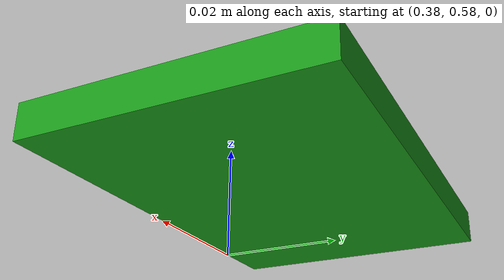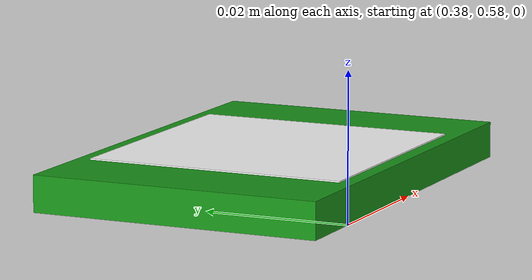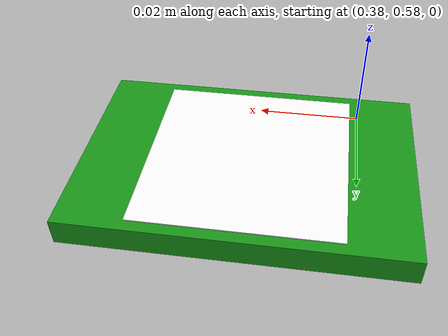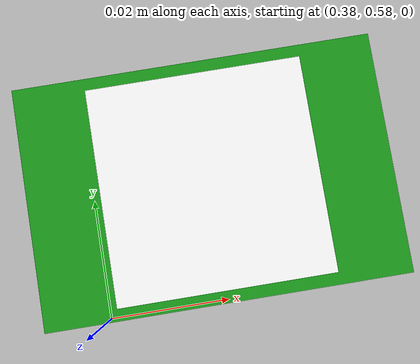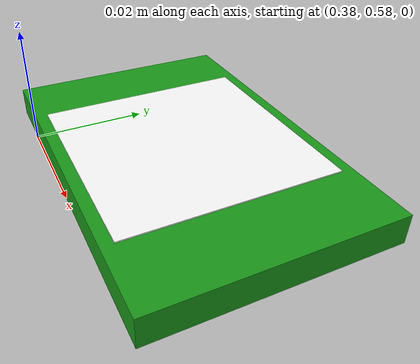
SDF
<?xml version="1.0"?>
<sdf version="1.9">
  <model name="board">
    <!-- pose 속성은 ros_gz_sim create 에 -file 로 넘겨 스폰하는 경우
         영향을 미치지 않는다. Launch 에서 -x/-y/-z/-R/-P/-Y 로 지정한다. -->
    <pose>0.4 0.6 0.0025 0 0 0</pose>
    <link name="board_link">
      <inertial>
        <mass>0.02</mass>
        <!-- 직육면체 관성 I = m(a^2 + b^2) / 12, m=0.02, x=0.06 y=0.04 z=0.005 -->
        <inertia>
          <ixx>2.708e-6</ixx>
          <ixy>0</ixy>
          <ixz>0</ixz>
          <iyy>6.042e-6</iyy>
          <iyz>0</iyz>
          <izz>8.667e-6</izz>
        </inertia>
      </inertial>

      <visual name="visual">
        <geometry>
          <box><size>0.06 0.04 0.005</size></box>
        </geometry>
        <material>
          <ambient>0.1 0.6 0.1 1</ambient>
          <diffuse>0.1 0.6 0.1 1</diffuse>
        </material>
      </visual>

      <visual name="marker">
        <pose>0 0 0.0026 0 0 0</pose>
        <geometry>
          <box><size>0.036 0.036 0.0002</size></box>
        </geometry>
        <material>
          <!-- 마커는 인쇄물에 가까운 비금속 표면이다. metalness 를 0 으로 두지
               않으면 금속으로 렌더링되는데, 금속은 확산 반사가 없어 반사할
               환경(스카이박스, 환경맵)이 없는 이 월드에서는 검게 보인다.
               roughness 를 높여 정반사도 억제한다. -->
          <ambient>1 1 1 1</ambient>
          <diffuse>1 1 1 1</diffuse>
          <specular>0 0 0 1</specular>
          <pbr>
            <metal>
              <albedo_map>model://board/materials/textures/aruco_4x4_id0.png</albedo_map>
              <metalness>0.0</metalness>
              <roughness>0.9</roughness>
            </metal>
          </pbr>
        </material>
      </visual>

      <collision name="collision">
        <geometry>
          <box><size>0.06 0.04 0.005</size></box>
        </geometry>
        <surface>
          <friction>
            <ode>
              <mu>1.0</mu>
              <mu2>1.0</mu2>
            </ode>
          </friction>
        </surface>
      </collision>
    </link>
  </model>
</sdf>
